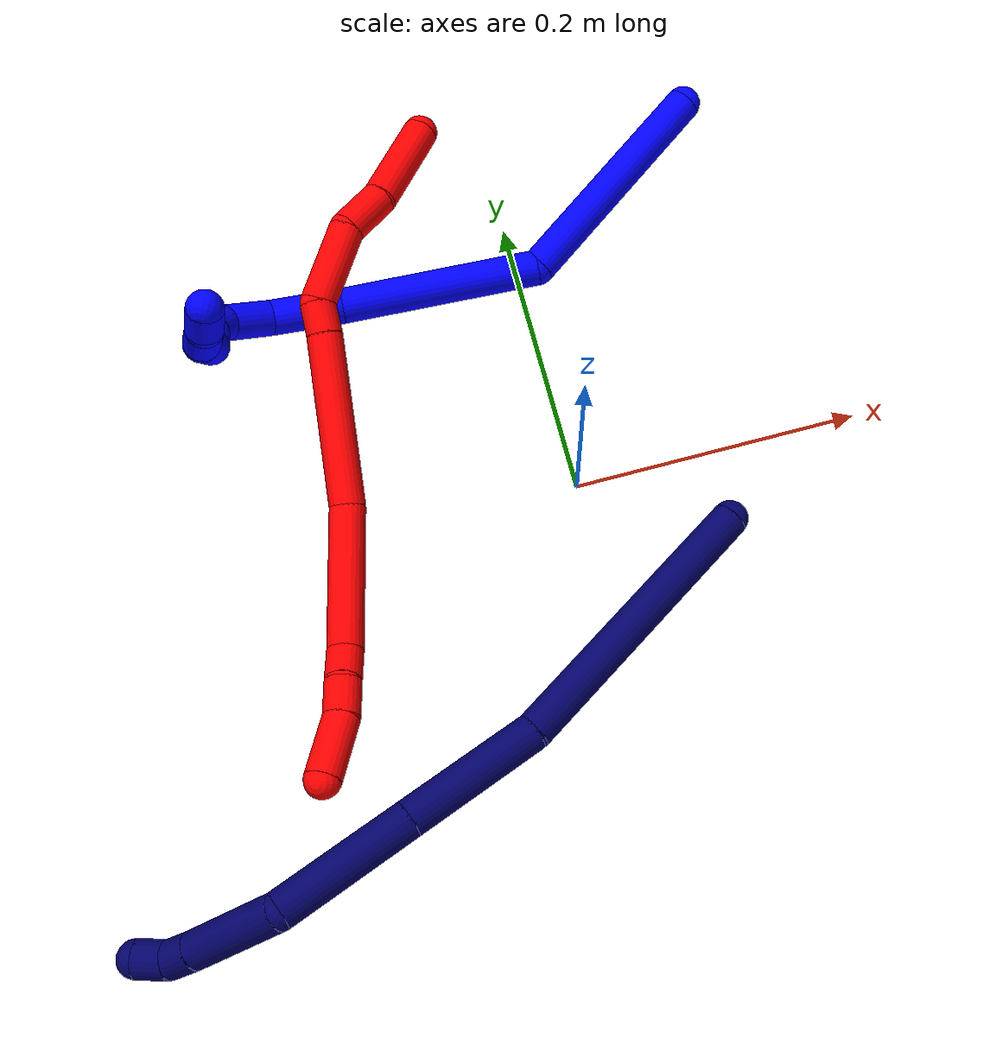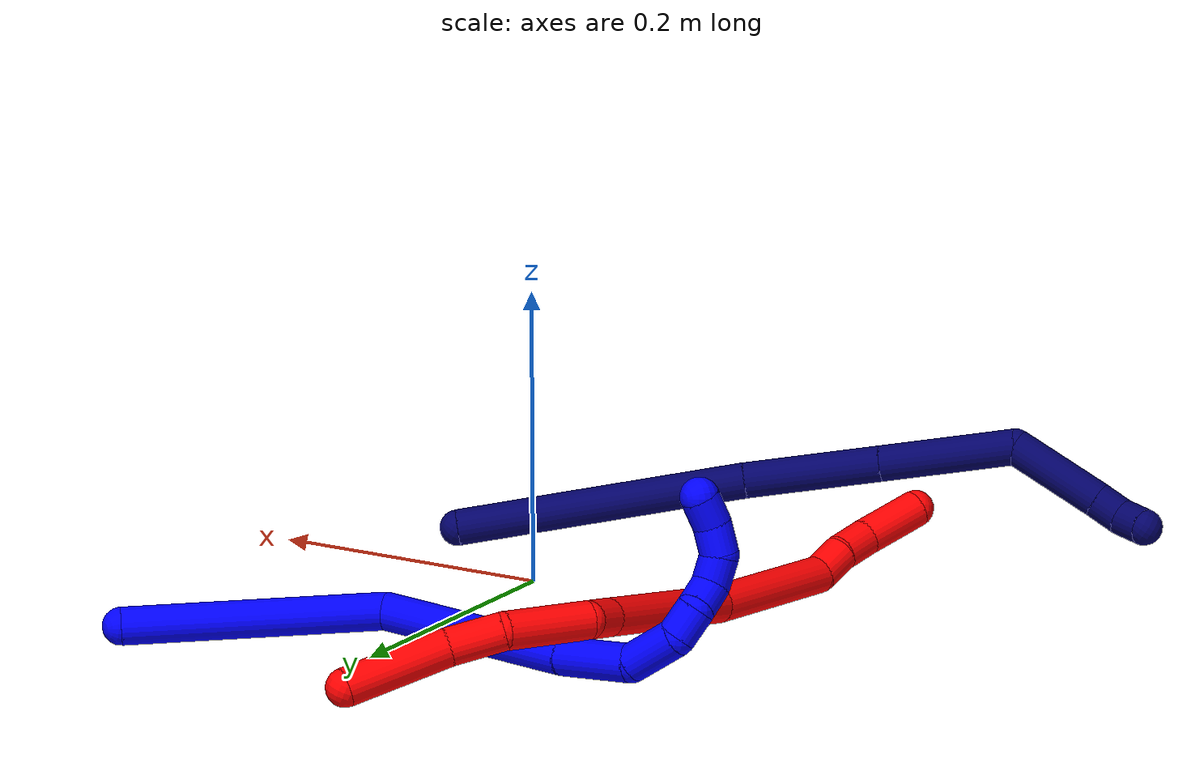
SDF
<sdf version="1.7">
 <world name="default">
  <model name="photoneo_s_sensor">
   <static>1</static>
   <pose>0 0 2 1.57079 1.57079 3.14159</pose>
   <link name="link">
    <inertial><mass>0.1</mass></inertial>
    <sensor name="sensor" type="depth">
     <update_rate>30</update_rate>
     <camera>
      <horizontal_fov>1.22</horizontal_fov>
      <image><width>1920</width><height>1200</height><format>B8G8R8</format></image>
      <clip><near>0.1</near><far>4</far></clip>
      <depth_camera><output>points</output></depth_camera>
     </camera>
     <plugin name="camera_plugin" filename="libgazebo_ros_depth_camera.so">
      <baseline>0.2</baseline>
      <alwaysOn>1</alwaysOn>
      <updateRate>0.0</updateRate>
      <cameraName>camera_ir</cameraName>
      <imageTopicName>/camera/color/image_raw</imageTopicName>
      <cameraInfoTopicName>/camera/color/camera_info</cameraInfoTopicName>
      <depthImageTopicName>/camera/depth/image_raw</depthImageTopicName>
      <depthImageCameraInfoTopicName>/camera/depth/camera_info</depthImageCameraInfoTopicName>
      <pointCloudTopicName>/camera/depth/points</pointCloudTopicName>
      <frameName>fr_optical</frameName>
      <pointCloudCutoff>0.1</pointCloudCutoff>
      <pointCloudCutoffMax>2.0</pointCloudCutoffMax>
      <distortionK1>0</distortionK1>
      <distortionK2>0</distortionK2>
      <distortionK3>0</distortionK3>
      <distortionT1>0</distortionT1>
      <distortionT2>0</distortionT2>
      <CxPrime>0</CxPrime>
      <Cx>0</Cx>
      <Cy>0</Cy>
      <focalLength>0</focalLength>
      <hackBaseline>0</hackBaseline>
     </plugin>
    </sensor>
   </link>
  </model>
  <model name="bin">
   <static>1</static>
   <link name="bottom">
    <collision name="collision-bottom">
     <pose>0 0 -0.01 0 -0 0</pose>
     <geometry><box><size>0.8 0.6 0.02</size></box></geometry>
     <surface>
      <friction><ode><mu>100</mu><mu2>100</mu2></ode></friction>
      <contact><collide_bitmask>65535</collide_bitmask></contact>
     </surface>
    </collision>
   </link>
   <link name="west_wall">
    <collision name="collision-west_wall">
     <pose>-0.41 0 0.1 0 -0 0</pose>
     <geometry><box><size>0.02 0.6 0.2</size></box></geometry>
     <surface>
      <friction><ode><mu>100</mu><mu2>100</mu2></ode></friction>
      <contact><collide_bitmask>65535</collide_bitmask></contact>
     </surface>
    </collision>
   </link>
   <link name="east_wall">
    <collision name="collision-east_wall">
     <pose>0.41 0 0.1 0 -0 0</pose>
     <geometry><box><size>0.02 0.6 0.2</size></box></geometry>
     <surface>
      <friction><ode><mu>100</mu><mu2>100</mu2></ode></friction>
      <contact><collide_bitmask>65535</collide_bitmask></contact>
     </surface>
    </collision>
   </link>
   <link name="south_wall">
    <collision name="collision-south_wall">
     <pose>0 -0.31 0.1 0 -0 0</pose>
     <geometry><box><size>0.8 0.02 0.2</size></box></geometry>
     <surface>
      <friction><ode><mu>100</mu><mu2>100</mu2></ode></friction>
      <contact><collide_bitmask>65535</collide_bitmask></contact>
     </surface>
    </collision>
   </link>
   <link name="north_wall">
    <collision name="collision-north_wall">
     <pose>0 0.31 0.1 0 -0 0</pose>
     <geometry><box><size>0.8 0.02 0.2</size></box></geometry>
     <surface>
      <friction><ode><mu>100</mu><mu2>100</mu2></ode></friction>
      <contact><collide_bitmask>65535</collide_bitmask></contact>
     </surface>
    </collision>
   </link>
  </model>
  <model name="1">
   <static>0</static>
   <link name="1">
    <collision name="collision-cylinder-e_1_1_4">
     <pose>-0.039189 -0.013141 -0.074519 2.96704 -0.47787 -2.45187</pose>
     <geometry><cylinder><radius>0.0125</radius><length>0.170429</length></cylinder></geometry>
     <surface>
      <friction><ode><mu>1.16</mu><mu2>1.16</mu2><slip1>0</slip1><slip2>0</slip2></ode></friction>
      <contact><ode><kp>1e+06</kp><kd>1</kd><max_vel>0</max_vel><min_depth>0.001</min_depth></ode></contact>
     </surface>
    </collision>
    <visual name="visual-cylinder-e_1_1_4">
     <pose>-0.039189 -0.013141 -0.074519 2.96704 -0.47787 -2.45187</pose>
     <geometry><cylinder><radius>0.0125</radius><length>0.170429</length></cylinder></geometry>
     <material><ambient>0 0 1 1</ambient></material>
    </visual>
    <collision name="collision-cylinder-e_2_4_5">
     <pose>-0.142725 -0.037637 -0.174113 2.71643 -1.16657 -2.50934</pose>
     <geometry><cylinder><radius>0.0125</radius><length>0.139974</length></cylinder></geometry>
     <surface>
      <friction><ode><mu>1.16</mu><mu2>1.16</mu2><slip1>0</slip1><slip2>0</slip2></ode></friction>
      <contact><ode><kp>1e+06</kp><kd>1</kd><max_vel>0</max_vel><min_depth>0.001</min_depth></ode></contact>
     </surface>
    </collision>
    <visual name="visual-cylinder-e_2_4_5">
     <pose>-0.142725 -0.037637 -0.174113 2.71643 -1.16657 -2.50934</pose>
     <geometry><cylinder><radius>0.0125</radius><length>0.139974</length></cylinder></geometry>
     <material><ambient>0 0 1 1</ambient></material>
    </visual>
    <collision name="collision-cylinder-e_3_5_6">
     <pose>-0.230004 -0.056244 -0.20886 2.49809 -1.08566 -2.13202</pose>
     <geometry><cylinder><radius>0.0125</radius><length>0.051847</length></cylinder></geometry>
     <surface>
      <friction><ode><mu>1.16</mu><mu2>1.16</mu2><slip1>0</slip1><slip2>0</slip2></ode></friction>
      <contact><ode><kp>1e+06</kp><kd>1</kd><max_vel>0</max_vel><min_depth>0.001</min_depth></ode></contact>
     </surface>
    </collision>
    <visual name="visual-cylinder-e_3_5_6">
     <pose>-0.230004 -0.056244 -0.20886 2.49809 -1.08566 -2.13202</pose>
     <geometry><cylinder><radius>0.0125</radius><length>0.051847</length></cylinder></geometry>
     <material><ambient>0 0 1 1</ambient></material>
    </visual>
    <collision name="collision-cylinder-e_4_6_7">
     <pose>-0.262829 -0.076242 -0.226545 2.1321 -0.581347 -0.992527</pose>
     <geometry><cylinder><radius>0.0125</radius><length>0.03603</length></cylinder></geometry>
     <surface>
      <friction><ode><mu>1.16</mu><mu2>1.16</mu2><slip1>0</slip1><slip2>0</slip2></ode></friction>
      <contact><ode><kp>1e+06</kp><kd>1</kd><max_vel>0</max_vel><min_depth>0.001</min_depth></ode></contact>
     </surface>
    </collision>
    <visual name="visual-cylinder-e_4_6_7">
     <pose>-0.262829 -0.076242 -0.226545 2.1321 -0.581347 -0.992527</pose>
     <geometry><cylinder><radius>0.0125</radius><length>0.03603</length></cylinder></geometry>
     <material><ambient>0 0 1 1</ambient></material>
    </visual>
    <collision name="collision-cylinder-e_5_7_8">
     <pose>-0.272477 -0.097941 -0.240654 2.16848 0.022562 0.042649</pose>
     <geometry><cylinder><radius>0.0125</radius><length>0.021668</length></cylinder></geometry>
     <surface>
      <friction><ode><mu>1.16</mu><mu2>1.16</mu2><slip1>0</slip1><slip2>0</slip2></ode></friction>
      <contact><ode><kp>1e+06</kp><kd>1</kd><max_vel>0</max_vel><min_depth>0.001</min_depth></ode></contact>
     </surface>
    </collision>
    <visual name="visual-cylinder-e_5_7_8">
     <pose>-0.272477 -0.097941 -0.240654 2.16848 0.022562 0.042649</pose>
     <geometry><cylinder><radius>0.0125</radius><length>0.021668</length></cylinder></geometry>
     <material><ambient>0 0 1 1</ambient></material>
    </visual>
    <collision name="collision-cylinder-e_6_8_9">
     <pose>-0.268022 -0.11183 -0.254392 2.56825 0.433418 1.28297</pose>
     <geometry><cylinder><radius>0.0125</radius><length>0.020051</length></cylinder></geometry>
     <surface>
      <friction><ode><mu>1.16</mu><mu2>1.16</mu2><slip1>0</slip1><slip2>0</slip2></ode></friction>
      <contact><ode><kp>1e+06</kp><kd>1</kd><max_vel>0</max_vel><min_depth>0.001</min_depth></ode></contact>
     </surface>
    </collision>
    <visual name="visual-cylinder-e_6_8_9">
     <pose>-0.268022 -0.11183 -0.254392 2.56825 0.433418 1.28297</pose>
     <geometry><cylinder><radius>0.0125</radius><length>0.020051</length></cylinder></geometry>
     <material><ambient>0 0 1 1</ambient></material>
    </visual>
    <collision name="collision-cylinder-e_7_9_10">
     <pose>-0.262344 -0.126262 -0.264804 1.85446 0.147277 0.196069</pose>
     <geometry><cylinder><radius>0.0125</radius><length>0.020001</length></cylinder></geometry>
     <surface>
      <friction><ode><mu>1.16</mu><mu2>1.16</mu2><slip1>0</slip1><slip2>0</slip2></ode></friction>
      <contact><ode><kp>1e+06</kp><kd>1</kd><max_vel>0</max_vel><min_depth>0.001</min_depth></ode></contact>
     </surface>
    </collision>
    <visual name="visual-cylinder-e_7_9_10">
     <pose>-0.262344 -0.126262 -0.264804 1.85446 0.147277 0.196069</pose>
     <geometry><cylinder><radius>0.0125</radius><length>0.020001</length></cylinder></geometry>
     <material><ambient>0 0 1 1</ambient></material>
    </visual>
    <collision name="collision-cylinder-e_8_10_11">
     <pose>-0.25643 -0.144591 -0.266084 1.40376 0.460813 0.391583</pose>
     <geometry><cylinder><radius>0.0125</radius><length>0.02</length></cylinder></geometry>
     <surface>
      <friction><ode><mu>1.16</mu><mu2>1.16</mu2><slip1>0</slip1><slip2>0</slip2></ode></friction>
      <contact><ode><kp>1e+06</kp><kd>1</kd><max_vel>0</max_vel><min_depth>0.001</min_depth></ode></contact>
     </surface>
    </collision>
    <visual name="visual-cylinder-e_8_10_11">
     <pose>-0.25643 -0.144591 -0.266084 1.40376 0.460813 0.391583</pose>
     <geometry><cylinder><radius>0.0125</radius><length>0.02</length></cylinder></geometry>
     <material><ambient>0 0 1 1</ambient></material>
    </visual>
    <collision name="collision-cylinder-e_9_11_2">
     <pose>-0.248858 -0.16197 -0.260447 1.11896 0.317885 0.20009</pose>
     <geometry><cylinder><radius>0.0125</radius><length>0.02</length></cylinder></geometry>
     <surface>
      <friction><ode><mu>1.16</mu><mu2>1.16</mu2><slip1>0</slip1><slip2>0</slip2></ode></friction>
      <contact><ode><kp>1e+06</kp><kd>1</kd><max_vel>0</max_vel><min_depth>0.001</min_depth></ode></contact>
     </surface>
    </collision>
    <visual name="visual-cylinder-e_9_11_2">
     <pose>-0.248858 -0.16197 -0.260447 1.11896 0.317885 0.20009</pose>
     <geometry><cylinder><radius>0.0125</radius><length>0.02</length></cylinder></geometry>
     <material><ambient>0 0 1 1</ambient></material>
    </visual>
    <collision name="collision-sphere-2">
     <pose>-0.245732 -0.170516 -0.2563 0 -0 0</pose>
     <geometry><sphere><radius>0.0125</radius></sphere></geometry>
     <surface>
      <friction><ode><mu>1.16</mu><mu2>1.16</mu2><slip1>0</slip1><slip2>0</slip2></ode></friction>
      <contact><ode><kp>1e+06</kp><kd>1</kd><max_vel>0</max_vel><min_depth>0.001</min_depth></ode></contact>
     </surface>
    </collision>
    <visual name="visual-sphere-2">
     <pose>-0.245732 -0.170516 -0.2563 0 -0 0</pose>
     <geometry><sphere><radius>0.0125</radius></sphere></geometry>
     <material><ambient>0 0 1 1</ambient></material>
    </visual>
    <collision name="collision-sphere-11">
     <pose>-0.251983 -0.153424 -0.264595 0 -0 0</pose>
     <geometry><sphere><radius>0.0125</radius></sphere></geometry>
     <surface>
      <friction><ode><mu>1.16</mu><mu2>1.16</mu2><slip1>0</slip1><slip2>0</slip2></ode></friction>
      <contact><ode><kp>1e+06</kp><kd>1</kd><max_vel>0</max_vel><min_depth>0.001</min_depth></ode></contact>
     </surface>
    </collision>
    <visual name="visual-sphere-11">
     <pose>-0.251983 -0.153424 -0.264595 0 -0 0</pose>
     <geometry><sphere><radius>0.0125</radius></sphere></geometry>
     <material><ambient>0 0 1 1</ambient></material>
    </visual>
    <collision name="collision-sphere-10">
     <pose>-0.260877 -0.135759 -0.267573 0 -0 0</pose>
     <geometry><sphere><radius>0.0125</radius></sphere></geometry>
     <surface>
      <friction><ode><mu>1.16</mu><mu2>1.16</mu2><slip1>0</slip1><slip2>0</slip2></ode></friction>
      <contact><ode><kp>1e+06</kp><kd>1</kd><max_vel>0</max_vel><min_depth>0.001</min_depth></ode></contact>
     </surface>
    </collision>
    <visual name="visual-sphere-10">
     <pose>-0.260877 -0.135759 -0.267573 0 -0 0</pose>
     <geometry><sphere><radius>0.0125</radius></sphere></geometry>
     <material><ambient>0 0 1 1</ambient></material>
    </visual>
    <collision name="collision-sphere-9">
     <pose>-0.263812 -0.116766 -0.262036 0 -0 0</pose>
     <geometry><sphere><radius>0.0125</radius></sphere></geometry>
     <surface>
      <friction><ode><mu>1.16</mu><mu2>1.16</mu2><slip1>0</slip1><slip2>0</slip2></ode></friction>
      <contact><ode><kp>1e+06</kp><kd>1</kd><max_vel>0</max_vel><min_depth>0.001</min_depth></ode></contact>
     </surface>
    </collision>
    <visual name="visual-sphere-9">
     <pose>-0.263812 -0.116766 -0.262036 0 -0 0</pose>
     <geometry><sphere><radius>0.0125</radius></sphere></geometry>
     <material><ambient>0 0 1 1</ambient></material>
    </visual>
    <collision name="collision-sphere-4">
     <pose>-0.078379 -0.026283 -0.149038 0 -0 0</pose>
     <geometry><sphere><radius>0.0125</radius></sphere></geometry>
     <surface>
      <friction><ode><mu>1.16</mu><mu2>1.16</mu2><slip1>0</slip1><slip2>0</slip2></ode></friction>
      <contact><ode><kp>1e+06</kp><kd>1</kd><max_vel>0</max_vel><min_depth>0.001</min_depth></ode></contact>
     </surface>
    </collision>
    <visual name="visual-sphere-4">
     <pose>-0.078379 -0.026283 -0.149038 0 -0 0</pose>
     <geometry><sphere><radius>0.0125</radius></sphere></geometry>
     <material><ambient>0 0 1 1</ambient></material>
    </visual>
    <collision name="collision-sphere-1">
     <geometry><sphere><radius>0.0125</radius></sphere></geometry>
     <surface>
      <friction><ode><mu>1.16</mu><mu2>1.16</mu2><slip1>0</slip1><slip2>0</slip2></ode></friction>
      <contact><ode><kp>1e+06</kp><kd>1</kd><max_vel>0</max_vel><min_depth>0.001</min_depth></ode></contact>
     </surface>
    </collision>
    <visual name="visual-sphere-1">
     <geometry><sphere><radius>0.0125</radius></sphere></geometry>
     <material><ambient>0 0 1 1</ambient></material>
    </visual>
    <collision name="collision-sphere-8">
     <pose>-0.272233 -0.106895 -0.246749 0 -0 0</pose>
     <geometry><sphere><radius>0.0125</radius></sphere></geometry>
     <surface>
      <friction><ode><mu>1.16</mu><mu2>1.16</mu2><slip1>0</slip1><slip2>0</slip2></ode></friction>
      <contact><ode><kp>1e+06</kp><kd>1</kd><max_vel>0</max_vel><min_depth>0.001</min_depth></ode></contact>
     </surface>
    </collision>
    <visual name="visual-sphere-8">
     <pose>-0.272233 -0.106895 -0.246749 0 -0 0</pose>
     <geometry><sphere><radius>0.0125</radius></sphere></geometry>
     <material><ambient>0 0 1 1</ambient></material>
    </visual>
    <collision name="collision-sphere-5">
     <pose>-0.207071 -0.04899 -0.199189 0 -0 0</pose>
     <geometry><sphere><radius>0.0125</radius></sphere></geometry>
     <surface>
      <friction><ode><mu>1.16</mu><mu2>1.16</mu2><slip1>0</slip1><slip2>0</slip2></ode></friction>
      <contact><ode><kp>1e+06</kp><kd>1</kd><max_vel>0</max_vel><min_depth>0.001</min_depth></ode></contact>
     </surface>
    </collision>
    <visual name="visual-sphere-5">
     <pose>-0.207071 -0.04899 -0.199189 0 -0 0</pose>
     <geometry><sphere><radius>0.0125</radius></sphere></geometry>
     <material><ambient>0 0 1 1</ambient></material>
    </visual>
    <collision name="collision-sphere-6">
     <pose>-0.252936 -0.063497 -0.218531 0 -0 0</pose>
     <geometry><sphere><radius>0.0125</radius></sphere></geometry>
     <surface>
      <friction><ode><mu>1.16</mu><mu2>1.16</mu2><slip1>0</slip1><slip2>0</slip2></ode></friction>
      <contact><ode><kp>1e+06</kp><kd>1</kd><max_vel>0</max_vel><min_depth>0.001</min_depth></ode></contact>
     </surface>
    </collision>
    <visual name="visual-sphere-6">
     <pose>-0.252936 -0.063497 -0.218531 0 -0 0</pose>
     <geometry><sphere><radius>0.0125</radius></sphere></geometry>
     <material><ambient>0 0 1 1</ambient></material>
    </visual>
    <collision name="collision-sphere-7">
     <pose>-0.272722 -0.088988 -0.234559 0 -0 0</pose>
     <geometry><sphere><radius>0.0125</radius></sphere></geometry>
     <surface>
      <friction><ode><mu>1.16</mu><mu2>1.16</mu2><slip1>0</slip1><slip2>0</slip2></ode></friction>
      <contact><ode><kp>1e+06</kp><kd>1</kd><max_vel>0</max_vel><min_depth>0.001</min_depth></ode></contact>
     </surface>
    </collision>
    <visual name="visual-sphere-7">
     <pose>-0.272722 -0.088988 -0.234559 0 -0 0</pose>
     <geometry><sphere><radius>0.0125</radius></sphere></geometry>
     <material><ambient>0 0 1 1</ambient></material>
    </visual>
    <inertial>
     <pose>-0.149365 -0.052384 -0.16441 0 -0 0</pose>
     <mass>0.5</mass>
     <inertia>
      <ixx>-0.000673</ixx>
      <ixy>0</ixy>
      <ixz>0</ixz>
      <iyy>0.000265</iyy>
      <iyz>0</iyz>
      <izz>0.000517</izz>
     </inertia>
    </inertial>
   </link>
   <pose>0.151845 0.259251 0.01344 -1.53705 -0.206753 -0.441103</pose>
  </model>
  <model name="2">
   <static>0</static>
   <link name="2">
    <collision name="collision-cylinder-e_1_1_4">
     <pose>-0.01415 -0.02442 0.02078 0.865764 -0.415602 -0.194255</pose>
     <geometry><cylinder><radius>0.0125</radius><length>0.070097</length></cylinder></geometry>
     <surface>
      <friction><ode><mu>1.16</mu><mu2>1.16</mu2><slip1>0</slip1><slip2>0</slip2></ode></friction>
      <contact><ode><kp>1e+06</kp><kd>1</kd><max_vel>0</max_vel><min_depth>0.001</min_depth></ode></contact>
     </surface>
    </collision>
    <visual name="visual-cylinder-e_1_1_4">
     <pose>-0.01415 -0.02442 0.02078 0.865764 -0.415602 -0.194255</pose>
     <geometry><cylinder><radius>0.0125</radius><length>0.070097</length></cylinder></geometry>
     <material><ambient>1 0 0 1</ambient></material>
    </visual>
    <collision name="collision-cylinder-e_2_4_5">
     <pose>-0.038861 -0.058794 0.052481 0.739078 -0.620478 -0.247086</pose>
     <geometry><cylinder><radius>0.0125</radius><length>0.036323</length></cylinder></geometry>
     <surface>
      <friction><ode><mu>1.16</mu><mu2>1.16</mu2><slip1>0</slip1><slip2>0</slip2></ode></friction>
      <contact><ode><kp>1e+06</kp><kd>1</kd><max_vel>0</max_vel><min_depth>0.001</min_depth></ode></contact>
     </surface>
    </collision>
    <visual name="visual-cylinder-e_2_4_5">
     <pose>-0.038861 -0.058794 0.052481 0.739078 -0.620478 -0.247086</pose>
     <geometry><cylinder><radius>0.0125</radius><length>0.036323</length></cylinder></geometry>
     <material><ambient>1 0 0 1</ambient></material>
    </visual>
    <collision name="collision-cylinder-e_3_5_6">
     <pose>-0.062218 -0.093211 0.073333 1.18518 -0.451353 -0.306739</pose>
     <geometry><cylinder><radius>0.0125</radius><length>0.058682</length></cylinder></geometry>
     <surface>
      <friction><ode><mu>1.16</mu><mu2>1.16</mu2><slip1>0</slip1><slip2>0</slip2></ode></friction>
      <contact><ode><kp>1e+06</kp><kd>1</kd><max_vel>0</max_vel><min_depth>0.001</min_depth></ode></contact>
     </surface>
    </collision>
    <visual name="visual-cylinder-e_3_5_6">
     <pose>-0.062218 -0.093211 0.073333 1.18518 -0.451353 -0.306739</pose>
     <geometry><cylinder><radius>0.0125</radius><length>0.058682</length></cylinder></geometry>
     <material><ambient>1 0 0 1</ambient></material>
    </visual>
    <collision name="collision-cylinder-e_4_6_7">
     <pose>-0.074946 -0.129076 0.083805 1.52339 0.006185 0.005899</pose>
     <geometry><cylinder><radius>0.0125</radius><length>0.022827</length></cylinder></geometry>
     <surface>
      <friction><ode><mu>1.16</mu><mu2>1.16</mu2><slip1>0</slip1><slip2>0</slip2></ode></friction>
      <contact><ode><kp>1e+06</kp><kd>1</kd><max_vel>0</max_vel><min_depth>0.001</min_depth></ode></contact>
     </surface>
    </collision>
    <visual name="visual-cylinder-e_4_6_7">
     <pose>-0.074946 -0.129076 0.083805 1.52339 0.006185 0.005899</pose>
     <geometry><cylinder><radius>0.0125</radius><length>0.022827</length></cylinder></geometry>
     <material><ambient>1 0 0 1</ambient></material>
    </visual>
    <collision name="collision-cylinder-e_5_7_8">
     <pose>-0.078693 -0.200111 0.089582 1.4832 -0.063688 -0.058344</pose>
     <geometry><cylinder><radius>0.0125</radius><length>0.119972</length></cylinder></geometry>
     <surface>
      <friction><ode><mu>1.16</mu><mu2>1.16</mu2><slip1>0</slip1><slip2>0</slip2></ode></friction>
      <contact><ode><kp>1e+06</kp><kd>1</kd><max_vel>0</max_vel><min_depth>0.001</min_depth></ode></contact>
     </surface>
    </collision>
    <visual name="visual-cylinder-e_5_7_8">
     <pose>-0.078693 -0.200111 0.089582 1.4832 -0.063688 -0.058344</pose>
     <geometry><cylinder><radius>0.0125</radius><length>0.119972</length></cylinder></geometry>
     <material><ambient>1 0 0 1</ambient></material>
    </visual>
    <collision name="collision-cylinder-e_6_8_9">
     <pose>-0.08912 -0.306642 0.10837 1.28951 -0.134581 -0.101267</pose>
     <geometry><cylinder><radius>0.0125</radius><length>0.098519</length></cylinder></geometry>
     <surface>
      <friction><ode><mu>1.16</mu><mu2>1.16</mu2><slip1>0</slip1><slip2>0</slip2></ode></friction>
      <contact><ode><kp>1e+06</kp><kd>1</kd><max_vel>0</max_vel><min_depth>0.001</min_depth></ode></contact>
     </surface>
    </collision>
    <visual name="visual-cylinder-e_6_8_9">
     <pose>-0.08912 -0.306642 0.10837 1.28951 -0.134581 -0.101267</pose>
     <geometry><cylinder><radius>0.0125</radius><length>0.098519</length></cylinder></geometry>
     <material><ambient>1 0 0 1</ambient></material>
    </visual>
    <collision name="collision-cylinder-e_7_9_10">
     <pose>-0.095514 -0.362747 0.129712 0.868575 0.017909 0.008307</pose>
     <geometry><cylinder><radius>0.0125</radius><length>0.024131</length></cylinder></geometry>
     <surface>
      <friction><ode><mu>1.16</mu><mu2>1.16</mu2><slip1>0</slip1><slip2>0</slip2></ode></friction>
      <contact><ode><kp>1e+06</kp><kd>1</kd><max_vel>0</max_vel><min_depth>0.001</min_depth></ode></contact>
     </surface>
    </collision>
    <visual name="visual-cylinder-e_7_9_10">
     <pose>-0.095514 -0.362747 0.129712 0.868575 0.017909 0.008307</pose>
     <geometry><cylinder><radius>0.0125</radius><length>0.024131</length></cylinder></geometry>
     <material><ambient>1 0 0 1</ambient></material>
    </visual>
    <collision name="collision-cylinder-e_8_10_11">
     <pose>-0.095993 -0.382993 0.143606 1.0657 -0.055136 -0.032522</pose>
     <geometry><cylinder><radius>0.0125</radius><length>0.02526</length></cylinder></geometry>
     <surface>
      <friction><ode><mu>1.16</mu><mu2>1.16</mu2><slip1>0</slip1><slip2>0</slip2></ode></friction>
      <contact><ode><kp>1e+06</kp><kd>1</kd><max_vel>0</max_vel><min_depth>0.001</min_depth></ode></contact>
     </surface>
    </collision>
    <visual name="visual-cylinder-e_8_10_11">
     <pose>-0.095993 -0.382993 0.143606 1.0657 -0.055136 -0.032522</pose>
     <geometry><cylinder><radius>0.0125</radius><length>0.02526</length></cylinder></geometry>
     <material><ambient>1 0 0 1</ambient></material>
    </visual>
    <collision name="collision-cylinder-e_9_11_2">
     <pose>-0.101637 -0.410883 0.163111 0.899008 -0.225823 -0.109303</pose>
     <geometry><cylinder><radius>0.0125</radius><length>0.044188</length></cylinder></geometry>
     <surface>
      <friction><ode><mu>1.16</mu><mu2>1.16</mu2><slip1>0</slip1><slip2>0</slip2></ode></friction>
      <contact><ode><kp>1e+06</kp><kd>1</kd><max_vel>0</max_vel><min_depth>0.001</min_depth></ode></contact>
     </surface>
    </collision>
    <visual name="visual-cylinder-e_9_11_2">
     <pose>-0.101637 -0.410883 0.163111 0.899008 -0.225823 -0.109303</pose>
     <geometry><cylinder><radius>0.0125</radius><length>0.044188</length></cylinder></geometry>
     <material><ambient>1 0 0 1</ambient></material>
    </visual>
    <collision name="collision-sphere-2">
     <pose>-0.106584 -0.427737 0.176513 0 -0 0</pose>
     <geometry><sphere><radius>0.0125</radius></sphere></geometry>
     <surface>
      <friction><ode><mu>1.16</mu><mu2>1.16</mu2><slip1>0</slip1><slip2>0</slip2></ode></friction>
      <contact><ode><kp>1e+06</kp><kd>1</kd><max_vel>0</max_vel><min_depth>0.001</min_depth></ode></contact>
     </surface>
    </collision>
    <visual name="visual-sphere-2">
     <pose>-0.106584 -0.427737 0.176513 0 -0 0</pose>
     <geometry><sphere><radius>0.0125</radius></sphere></geometry>
     <material><ambient>1 0 0 1</ambient></material>
    </visual>
    <collision name="collision-sphere-11">
     <pose>-0.096689 -0.394029 0.149709 0 -0 0</pose>
     <geometry><sphere><radius>0.0125</radius></sphere></geometry>
     <surface>
      <friction><ode><mu>1.16</mu><mu2>1.16</mu2><slip1>0</slip1><slip2>0</slip2></ode></friction>
      <contact><ode><kp>1e+06</kp><kd>1</kd><max_vel>0</max_vel><min_depth>0.001</min_depth></ode></contact>
     </surface>
    </collision>
    <visual name="visual-sphere-11">
     <pose>-0.096689 -0.394029 0.149709 0 -0 0</pose>
     <geometry><sphere><radius>0.0125</radius></sphere></geometry>
     <material><ambient>1 0 0 1</ambient></material>
    </visual>
    <collision name="collision-sphere-10">
     <pose>-0.095297 -0.371957 0.137504 0 -0 0</pose>
     <geometry><sphere><radius>0.0125</radius></sphere></geometry>
     <surface>
      <friction><ode><mu>1.16</mu><mu2>1.16</mu2><slip1>0</slip1><slip2>0</slip2></ode></friction>
      <contact><ode><kp>1e+06</kp><kd>1</kd><max_vel>0</max_vel><min_depth>0.001</min_depth></ode></contact>
     </surface>
    </collision>
    <visual name="visual-sphere-10">
     <pose>-0.095297 -0.371957 0.137504 0 -0 0</pose>
     <geometry><sphere><radius>0.0125</radius></sphere></geometry>
     <material><ambient>1 0 0 1</ambient></material>
    </visual>
    <collision name="collision-sphere-9">
     <pose>-0.09573 -0.353538 0.12192 0 -0 0</pose>
     <geometry><sphere><radius>0.0125</radius></sphere></geometry>
     <surface>
      <friction><ode><mu>1.16</mu><mu2>1.16</mu2><slip1>0</slip1><slip2>0</slip2></ode></friction>
      <contact><ode><kp>1e+06</kp><kd>1</kd><max_vel>0</max_vel><min_depth>0.001</min_depth></ode></contact>
     </surface>
    </collision>
    <visual name="visual-sphere-9">
     <pose>-0.09573 -0.353538 0.12192 0 -0 0</pose>
     <geometry><sphere><radius>0.0125</radius></sphere></geometry>
     <material><ambient>1 0 0 1</ambient></material>
    </visual>
    <collision name="collision-sphere-4">
     <pose>-0.028301 -0.04884 0.04156 0 -0 0</pose>
     <geometry><sphere><radius>0.0125</radius></sphere></geometry>
     <surface>
      <friction><ode><mu>1.16</mu><mu2>1.16</mu2><slip1>0</slip1><slip2>0</slip2></ode></friction>
      <contact><ode><kp>1e+06</kp><kd>1</kd><max_vel>0</max_vel><min_depth>0.001</min_depth></ode></contact>
     </surface>
    </collision>
    <visual name="visual-sphere-4">
     <pose>-0.028301 -0.04884 0.04156 0 -0 0</pose>
     <geometry><sphere><radius>0.0125</radius></sphere></geometry>
     <material><ambient>1 0 0 1</ambient></material>
    </visual>
    <collision name="collision-sphere-1">
     <geometry><sphere><radius>0.0125</radius></sphere></geometry>
     <surface>
      <friction><ode><mu>1.16</mu><mu2>1.16</mu2><slip1>0</slip1><slip2>0</slip2></ode></friction>
      <contact><ode><kp>1e+06</kp><kd>1</kd><max_vel>0</max_vel><min_depth>0.001</min_depth></ode></contact>
     </surface>
    </collision>
    <visual name="visual-sphere-1">
     <geometry><sphere><radius>0.0125</radius></sphere></geometry>
     <material><ambient>1 0 0 1</ambient></material>
    </visual>
    <collision name="collision-sphere-8">
     <pose>-0.082511 -0.259746 0.09482 0 -0 0</pose>
     <geometry><sphere><radius>0.0125</radius></sphere></geometry>
     <surface>
      <friction><ode><mu>1.16</mu><mu2>1.16</mu2><slip1>0</slip1><slip2>0</slip2></ode></friction>
      <contact><ode><kp>1e+06</kp><kd>1</kd><max_vel>0</max_vel><min_depth>0.001</min_depth></ode></contact>
     </surface>
    </collision>
    <visual name="visual-sphere-8">
     <pose>-0.082511 -0.259746 0.09482 0 -0 0</pose>
     <geometry><sphere><radius>0.0125</radius></sphere></geometry>
     <material><ambient>1 0 0 1</ambient></material>
    </visual>
    <collision name="collision-sphere-5">
     <pose>-0.04942 -0.068747 0.063402 0 -0 0</pose>
     <geometry><sphere><radius>0.0125</radius></sphere></geometry>
     <surface>
      <friction><ode><mu>1.16</mu><mu2>1.16</mu2><slip1>0</slip1><slip2>0</slip2></ode></friction>
      <contact><ode><kp>1e+06</kp><kd>1</kd><max_vel>0</max_vel><min_depth>0.001</min_depth></ode></contact>
     </surface>
    </collision>
    <visual name="visual-sphere-5">
     <pose>-0.04942 -0.068747 0.063402 0 -0 0</pose>
     <geometry><sphere><radius>0.0125</radius></sphere></geometry>
     <material><ambient>1 0 0 1</ambient></material>
    </visual>
    <collision name="collision-sphere-6">
     <pose>-0.075016 -0.117675 0.083264 0 -0 0</pose>
     <geometry><sphere><radius>0.0125</radius></sphere></geometry>
     <surface>
      <friction><ode><mu>1.16</mu><mu2>1.16</mu2><slip1>0</slip1><slip2>0</slip2></ode></friction>
      <contact><ode><kp>1e+06</kp><kd>1</kd><max_vel>0</max_vel><min_depth>0.001</min_depth></ode></contact>
     </surface>
    </collision>
    <visual name="visual-sphere-6">
     <pose>-0.075016 -0.117675 0.083264 0 -0 0</pose>
     <geometry><sphere><radius>0.0125</radius></sphere></geometry>
     <material><ambient>1 0 0 1</ambient></material>
    </visual>
    <collision name="collision-sphere-7">
     <pose>-0.074875 -0.140476 0.084345 0 -0 0</pose>
     <geometry><sphere><radius>0.0125</radius></sphere></geometry>
     <surface>
      <friction><ode><mu>1.16</mu><mu2>1.16</mu2><slip1>0</slip1><slip2>0</slip2></ode></friction>
      <contact><ode><kp>1e+06</kp><kd>1</kd><max_vel>0</max_vel><min_depth>0.001</min_depth></ode></contact>
     </surface>
    </collision>
    <visual name="visual-sphere-7">
     <pose>-0.074875 -0.140476 0.084345 0 -0 0</pose>
     <geometry><sphere><radius>0.0125</radius></sphere></geometry>
     <material><ambient>1 0 0 1</ambient></material>
    </visual>
    <inertial>
     <pose>-0.070414 -0.206131 0.089937 0 -0 0</pose>
     <mass>0.5</mass>
     <inertia>
      <ixx>0.000256</ixx>
      <ixy>0</ixy>
      <ixz>0</ixz>
      <iyy>1.8e-05</iyy>
      <iyz>0</iyz>
      <izz>0.000341</izz>
     </inertia>
    </inertial>
   </link>
   <pose>-0.039887 0.287392 0.010922 0.241784 -0.321322 -0.102405</pose>
  </model>
  <model name="7">
   <static>0</static>
   <link name="7">
    <collision name="collision-cylinder-e_1_1_4">
     <pose>-0.058028 -0.032208 0.076011 0.400789 -0.612681 -0.128317</pose>
     <geometry><cylinder><radius>0.0125</radius><length>0.201814</length></cylinder></geometry>
     <surface>
      <friction><ode><mu>1.16</mu><mu2>1.16</mu2><slip1>0</slip1><slip2>0</slip2></ode></friction>
      <contact><ode><kp>1e+06</kp><kd>1</kd><max_vel>0</max_vel><min_depth>0.001</min_depth></ode></contact>
     </surface>
    </collision>
    <visual name="visual-cylinder-e_1_1_4">
     <pose>-0.058028 -0.032208 0.076011 0.400789 -0.612681 -0.128317</pose>
     <geometry><cylinder><radius>0.0125</radius><length>0.201814</length></cylinder></geometry>
     <material><ambient>0.003922 0 0.403922 1</ambient></material>
    </visual>
    <collision name="collision-cylinder-e_2_4_5">
     <pose>-0.138408 -0.087974 0.187217 0.58988 -0.485616 -0.150217</pose>
     <geometry><cylinder><radius>0.0125</radius><length>0.095776</length></cylinder></geometry>
     <surface>
      <friction><ode><mu>1.16</mu><mu2>1.16</mu2><slip1>0</slip1><slip2>0</slip2></ode></friction>
      <contact><ode><kp>1e+06</kp><kd>1</kd><max_vel>0</max_vel><min_depth>0.001</min_depth></ode></contact>
     </surface>
    </collision>
    <visual name="visual-cylinder-e_2_4_5">
     <pose>-0.138408 -0.087974 0.187217 0.58988 -0.485616 -0.150217</pose>
     <geometry><cylinder><radius>0.0125</radius><length>0.095776</length></cylinder></geometry>
     <material><ambient>0.003922 0 0.403922 1</ambient></material>
    </visual>
    <collision name="collision-cylinder-e_3_5_6">
     <pose>-0.182749 -0.134622 0.256948 0.589295 -0.486814 -0.150443</pose>
     <geometry><cylinder><radius>0.0125</radius><length>0.09401</length></cylinder></geometry>
     <surface>
      <friction><ode><mu>1.16</mu><mu2>1.16</mu2><slip1>0</slip1><slip2>0</slip2></ode></friction>
      <contact><ode><kp>1e+06</kp><kd>1</kd><max_vel>0</max_vel><min_depth>0.001</min_depth></ode></contact>
     </surface>
    </collision>
    <visual name="visual-cylinder-e_3_5_6">
     <pose>-0.182749 -0.134622 0.256948 0.589295 -0.486814 -0.150443</pose>
     <geometry><cylinder><radius>0.0125</radius><length>0.09401</length></cylinder></geometry>
     <material><ambient>0.003922 0 0.403922 1</ambient></material>
    </visual>
    <collision name="collision-cylinder-e_4_6_7">
     <pose>-0.199375 -0.16814 0.322917 0.32037 0.160585 0.026</pose>
     <geometry><cylinder><radius>0.0125</radius><length>0.067097</length></cylinder></geometry>
     <surface>
      <friction><ode><mu>1.16</mu><mu2>1.16</mu2><slip1>0</slip1><slip2>0</slip2></ode></friction>
      <contact><ode><kp>1e+06</kp><kd>1</kd><max_vel>0</max_vel><min_depth>0.001</min_depth></ode></contact>
     </surface>
    </collision>
    <visual name="visual-cylinder-e_4_6_7">
     <pose>-0.199375 -0.16814 0.322917 0.32037 0.160585 0.026</pose>
     <geometry><cylinder><radius>0.0125</radius><length>0.067097</length></cylinder></geometry>
     <material><ambient>0.003922 0 0.403922 1</ambient></material>
    </visual>
    <collision name="collision-cylinder-e_5_7_8">
     <pose>-0.191931 -0.182002 0.363794 0.348573 0.203992 0.036039</pose>
     <geometry><cylinder><radius>0.0125</radius><length>0.020524</length></cylinder></geometry>
     <surface>
      <friction><ode><mu>1.16</mu><mu2>1.16</mu2><slip1>0</slip1><slip2>0</slip2></ode></friction>
      <contact><ode><kp>1e+06</kp><kd>1</kd><max_vel>0</max_vel><min_depth>0.001</min_depth></ode></contact>
     </surface>
    </collision>
    <visual name="visual-cylinder-e_5_7_8">
     <pose>-0.191931 -0.182002 0.363794 0.348573 0.203992 0.036039</pose>
     <geometry><cylinder><radius>0.0125</radius><length>0.020524</length></cylinder></geometry>
     <material><ambient>0.003922 0 0.403922 1</ambient></material>
    </visual>
    <collision name="collision-cylinder-e_6_8_2">
     <pose>-0.187751 -0.193132 0.379892 0.858129 0.203637 0.093417</pose>
     <geometry><cylinder><radius>0.0125</radius><length>0.020778</length></cylinder></geometry>
     <surface>
      <friction><ode><mu>1.16</mu><mu2>1.16</mu2><slip1>0</slip1><slip2>0</slip2></ode></friction>
      <contact><ode><kp>1e+06</kp><kd>1</kd><max_vel>0</max_vel><min_depth>0.001</min_depth></ode></contact>
     </surface>
    </collision>
    <visual name="visual-cylinder-e_6_8_2">
     <pose>-0.187751 -0.193132 0.379892 0.858129 0.203637 0.093417</pose>
     <geometry><cylinder><radius>0.0125</radius><length>0.020778</length></cylinder></geometry>
     <material><ambient>0.003922 0 0.403922 1</ambient></material>
    </visual>
    <collision name="collision-sphere-2">
     <pose>-0.18565 -0.200831 0.386544 0 -0 0</pose>
     <geometry><sphere><radius>0.0125</radius></sphere></geometry>
     <surface>
      <friction><ode><mu>1.16</mu><mu2>1.16</mu2><slip1>0</slip1><slip2>0</slip2></ode></friction>
      <contact><ode><kp>1e+06</kp><kd>1</kd><max_vel>0</max_vel><min_depth>0.001</min_depth></ode></contact>
     </surface>
    </collision>
    <visual name="visual-sphere-2">
     <pose>-0.18565 -0.200831 0.386544 0 -0 0</pose>
     <geometry><sphere><radius>0.0125</radius></sphere></geometry>
     <material><ambient>0.003922 0 0.403922 1</ambient></material>
    </visual>
    <collision name="collision-sphere-4">
     <pose>-0.116056 -0.064415 0.152022 0 -0 0</pose>
     <geometry><sphere><radius>0.0125</radius></sphere></geometry>
     <surface>
      <friction><ode><mu>1.16</mu><mu2>1.16</mu2><slip1>0</slip1><slip2>0</slip2></ode></friction>
      <contact><ode><kp>1e+06</kp><kd>1</kd><max_vel>0</max_vel><min_depth>0.001</min_depth></ode></contact>
     </surface>
    </collision>
    <visual name="visual-sphere-4">
     <pose>-0.116056 -0.064415 0.152022 0 -0 0</pose>
     <geometry><sphere><radius>0.0125</radius></sphere></geometry>
     <material><ambient>0.003922 0 0.403922 1</ambient></material>
    </visual>
    <collision name="collision-sphere-1">
     <geometry><sphere><radius>0.0125</radius></sphere></geometry>
     <surface>
      <friction><ode><mu>1.16</mu><mu2>1.16</mu2><slip1>0</slip1><slip2>0</slip2></ode></friction>
      <contact><ode><kp>1e+06</kp><kd>1</kd><max_vel>0</max_vel><min_depth>0.001</min_depth></ode></contact>
     </surface>
    </collision>
    <visual name="visual-sphere-1">
     <geometry><sphere><radius>0.0125</radius></sphere></geometry>
     <material><ambient>0.003922 0 0.403922 1</ambient></material>
    </visual>
    <collision name="collision-sphere-8">
     <pose>-0.189853 -0.185434 0.373239 0 -0 0</pose>
     <geometry><sphere><radius>0.0125</radius></sphere></geometry>
     <surface>
      <friction><ode><mu>1.16</mu><mu2>1.16</mu2><slip1>0</slip1><slip2>0</slip2></ode></friction>
      <contact><ode><kp>1e+06</kp><kd>1</kd><max_vel>0</max_vel><min_depth>0.001</min_depth></ode></contact>
     </surface>
    </collision>
    <visual name="visual-sphere-8">
     <pose>-0.189853 -0.185434 0.373239 0 -0 0</pose>
     <geometry><sphere><radius>0.0125</radius></sphere></geometry>
     <material><ambient>0.003922 0 0.403922 1</ambient></material>
    </visual>
    <collision name="collision-sphere-5">
     <pose>-0.16076 -0.111533 0.222411 0 -0 0</pose>
     <geometry><sphere><radius>0.0125</radius></sphere></geometry>
     <surface>
      <friction><ode><mu>1.16</mu><mu2>1.16</mu2><slip1>0</slip1><slip2>0</slip2></ode></friction>
      <contact><ode><kp>1e+06</kp><kd>1</kd><max_vel>0</max_vel><min_depth>0.001</min_depth></ode></contact>
     </surface>
    </collision>
    <visual name="visual-sphere-5">
     <pose>-0.16076 -0.111533 0.222411 0 -0 0</pose>
     <geometry><sphere><radius>0.0125</radius></sphere></geometry>
     <material><ambient>0.003922 0 0.403922 1</ambient></material>
    </visual>
    <collision name="collision-sphere-6">
     <pose>-0.204739 -0.157711 0.291486 0 -0 0</pose>
     <geometry><sphere><radius>0.0125</radius></sphere></geometry>
     <surface>
      <friction><ode><mu>1.16</mu><mu2>1.16</mu2><slip1>0</slip1><slip2>0</slip2></ode></friction>
      <contact><ode><kp>1e+06</kp><kd>1</kd><max_vel>0</max_vel><min_depth>0.001</min_depth></ode></contact>
     </surface>
    </collision>
    <visual name="visual-sphere-6">
     <pose>-0.204739 -0.157711 0.291486 0 -0 0</pose>
     <geometry><sphere><radius>0.0125</radius></sphere></geometry>
     <material><ambient>0.003922 0 0.403922 1</ambient></material>
    </visual>
    <collision name="collision-sphere-7">
     <pose>-0.19401 -0.178569 0.354349 0 -0 0</pose>
     <geometry><sphere><radius>0.0125</radius></sphere></geometry>
     <surface>
      <friction><ode><mu>1.16</mu><mu2>1.16</mu2><slip1>0</slip1><slip2>0</slip2></ode></friction>
      <contact><ode><kp>1e+06</kp><kd>1</kd><max_vel>0</max_vel><min_depth>0.001</min_depth></ode></contact>
     </surface>
    </collision>
    <visual name="visual-sphere-7">
     <pose>-0.19401 -0.178569 0.354349 0 -0 0</pose>
     <geometry><sphere><radius>0.0125</radius></sphere></geometry>
     <material><ambient>0.003922 0 0.403922 1</ambient></material>
    </visual>
    <inertial>
     <pose>-0.12673 -0.093223 0.188907 0 -0 0</pose>
     <mass>0.5</mass>
     <inertia>
      <ixx>0.000618</ixx>
      <ixy>0</ixy>
      <ixz>0</ixz>
      <iyy>0.000703</iyy>
      <iyz>0</iyz>
      <izz>0.000799</izz>
     </inertia>
    </inertial>
   </link>
   <pose>0.093289 -0.051422 0.011484 -2.42239 0.785074 1.41806</pose>
  </model>
 </world>
</sdf>
